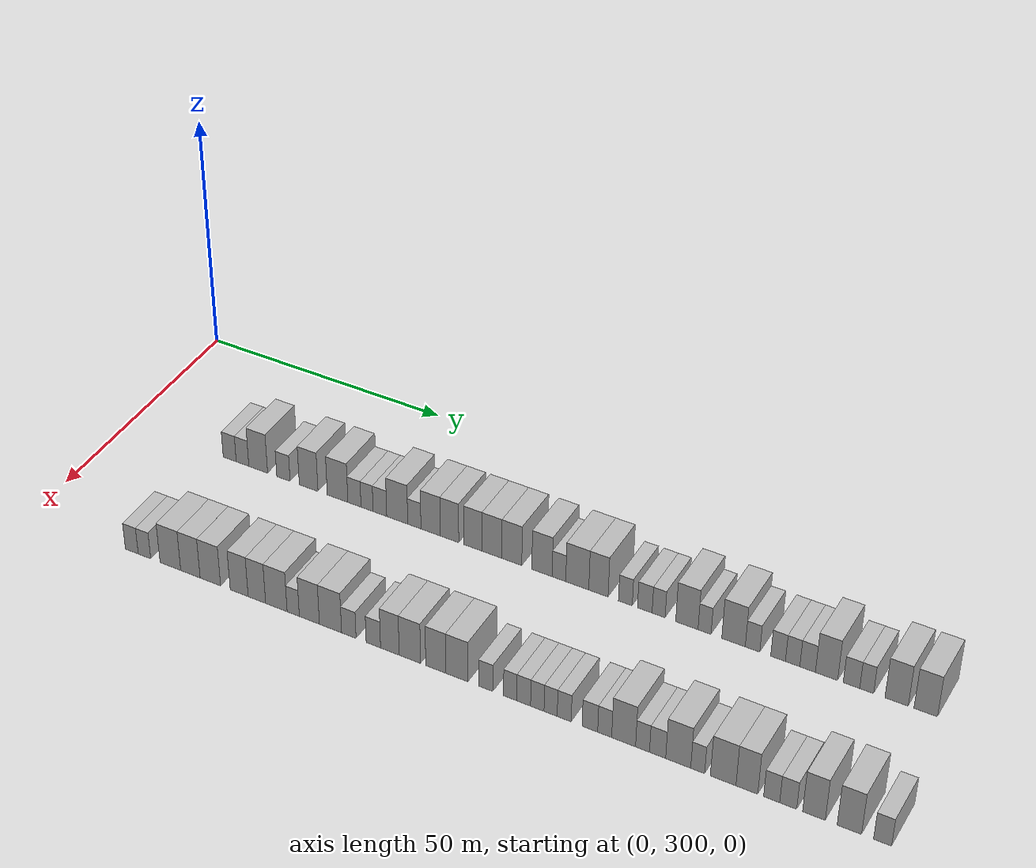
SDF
<sdf version="1.6">
 <world name="default">
  <model name="building_194">
   <static>1</static>
   <pose>25.0000 322.6376 0 0.000000 0.000000 0.000000</pose>
   <link name="link">
    <pose>0 0 3.00 0 0 0</pose>
    <collision name="collision"><geometry><box><size>10.0000 2.8673 6.0000</size></box></geometry></collision>
    <visual name="visual">
     <cast_shadows>0</cast_shadows>
     <geometry><box><size>10.0000 2.8673 6.0000</size></box></geometry>
     <material>
      <script>
       <uri>model://HANNAS_wall/materials/scripts</uri>
       <uri>model://HANNAS_wall/materials/textures</uri>
       <name>vrc/HANNAS_wall</name>
      </script>
     </material>
    </visual>
   </link>
  </model>
  <model name="building_195">
   <static>1</static>
   <pose>25.0000 325.4622 0 0.000000 0.000000 0.000000</pose>
   <link name="link">
    <pose>0 0 3.00 0 0 0</pose>
    <collision name="collision"><geometry><box><size>10.0000 2.7819 6.0000</size></box></geometry></collision>
    <visual name="visual">
     <cast_shadows>0</cast_shadows>
     <geometry><box><size>10.0000 2.7819 6.0000</size></box></geometry>
     <material>
      <script>
       <uri>model://HANNAS_wall/materials/scripts</uri>
       <uri>model://HANNAS_wall/materials/textures</uri>
       <name>vrc/HANNAS_wall</name>
      </script>
     </material>
    </visual>
   </link>
  </model>
  <model name="building_196">
   <static>1</static>
   <pose>25.0000 328.9124 0 0.000000 0.000000 0.000000</pose>
   <link name="link">
    <pose>0 0 4.50 0 0 0</pose>
    <collision name="collision"><geometry><box><size>10.0000 4.1185 9.0000</size></box></geometry></collision>
    <visual name="visual">
     <cast_shadows>0</cast_shadows>
     <geometry><box><size>10.0000 4.1185 9.0000</size></box></geometry>
     <material>
      <script>
       <uri>model://HANNAS_wall/materials/scripts</uri>
       <uri>model://HANNAS_wall/materials/textures</uri>
       <name>vrc/HANNAS_wall</name>
      </script>
     </material>
    </visual>
   </link>
  </model>
  <model name="building_197">
   <static>1</static>
   <pose>25.0000 334.4151 0 0.000000 0.000000 0.000000</pose>
   <link name="link">
    <pose>0 0 3.00 0 0 0</pose>
    <collision name="collision"><geometry><box><size>10.0000 2.8869 6.0000</size></box></geometry></collision>
    <visual name="visual">
     <cast_shadows>0</cast_shadows>
     <geometry><box><size>10.0000 2.8869 6.0000</size></box></geometry>
     <material>
      <script>
       <uri>model://HANNAS_wall/materials/scripts</uri>
       <uri>model://HANNAS_wall/materials/textures</uri>
       <name>vrc/HANNAS_wall</name>
      </script>
     </material>
    </visual>
   </link>
  </model>
  <model name="building_198">
   <static>1</static>
   <pose>25.0000 339.8679 0 0.000000 0.000000 0.000000</pose>
   <link name="link">
    <pose>0 0 4.50 0 0 0</pose>
    <collision name="collision"><geometry><box><size>10.0000 4.0186 9.0000</size></box></geometry></collision>
    <visual name="visual">
     <cast_shadows>0</cast_shadows>
     <geometry><box><size>10.0000 4.0186 9.0000</size></box></geometry>
     <material>
      <script>
       <uri>model://HANNAS_wall/materials/scripts</uri>
       <uri>model://HANNAS_wall/materials/textures</uri>
       <name>vrc/HANNAS_wall</name>
      </script>
     </material>
    </visual>
   </link>
  </model>
  <model name="building_199">
   <static>1</static>
   <pose>25.0000 346.0667 0 0.000000 0.000000 0.000000</pose>
   <link name="link">
    <pose>0 0 4.50 0 0 0</pose>
    <collision name="collision"><geometry><box><size>10.0000 4.3789 9.0000</size></box></geometry></collision>
    <visual name="visual">
     <cast_shadows>0</cast_shadows>
     <geometry><box><size>10.0000 4.3789 9.0000</size></box></geometry>
     <material>
      <script>
       <uri>model://HANNAS_wall/materials/scripts</uri>
       <uri>model://HANNAS_wall/materials/textures</uri>
       <name>vrc/HANNAS_wall</name>
      </script>
     </material>
    </visual>
   </link>
  </model>
  <model name="building_200">
   <static>1</static>
   <pose>25.0000 349.6425 0 0.000000 0.000000 0.000000</pose>
   <link name="link">
    <pose>0 0 3.00 0 0 0</pose>
    <collision name="collision"><geometry><box><size>10.0000 2.7727 6.0000</size></box></geometry></collision>
    <visual name="visual">
     <cast_shadows>0</cast_shadows>
     <geometry><box><size>10.0000 2.7727 6.0000</size></box></geometry>
     <material>
      <script>
       <uri>model://HANNAS_wall/materials/scripts</uri>
       <uri>model://HANNAS_wall/materials/textures</uri>
       <name>vrc/HANNAS_wall</name>
      </script>
     </material>
    </visual>
   </link>
  </model>
  <model name="building_201">
   <static>1</static>
   <pose>25.0000 352.3011 0 0.000000 0.000000 0.000000</pose>
   <link name="link">
    <pose>0 0 3.00 0 0 0</pose>
    <collision name="collision"><geometry><box><size>10.0000 2.5446 6.0000</size></box></geometry></collision>
    <visual name="visual">
     <cast_shadows>0</cast_shadows>
     <geometry><box><size>10.0000 2.5446 6.0000</size></box></geometry>
     <material>
      <script>
       <uri>model://HANNAS_wall/materials/scripts</uri>
       <uri>model://HANNAS_wall/materials/textures</uri>
       <name>vrc/HANNAS_wall</name>
      </script>
     </material>
    </visual>
   </link>
  </model>
  <model name="building_202">
   <static>1</static>
   <pose>25.0000 355.0035 0 0.000000 0.000000 0.000000</pose>
   <link name="link">
    <pose>0 0 3.00 0 0 0</pose>
    <collision name="collision"><geometry><box><size>10.0000 2.8601 6.0000</size></box></geometry></collision>
    <visual name="visual">
     <cast_shadows>0</cast_shadows>
     <geometry><box><size>10.0000 2.8601 6.0000</size></box></geometry>
     <material>
      <script>
       <uri>model://HANNAS_wall/materials/scripts</uri>
       <uri>model://HANNAS_wall/materials/textures</uri>
       <name>vrc/HANNAS_wall</name>
      </script>
     </material>
    </visual>
   </link>
  </model>
  <model name="building_203">
   <static>1</static>
   <pose>25.0000 358.6235 0 0.000000 0.000000 0.000000</pose>
   <link name="link">
    <pose>0 0 4.50 0 0 0</pose>
    <collision name="collision"><geometry><box><size>10.0000 4.3799 9.0000</size></box></geometry></collision>
    <visual name="visual">
     <cast_shadows>0</cast_shadows>
     <geometry><box><size>10.0000 4.3799 9.0000</size></box></geometry>
     <material>
      <script>
       <uri>model://HANNAS_wall/materials/scripts</uri>
       <uri>model://HANNAS_wall/materials/textures</uri>
       <name>vrc/HANNAS_wall</name>
      </script>
     </material>
    </visual>
   </link>
  </model>
  <model name="building_204">
   <static>1</static>
   <pose>25.0000 362.1797 0 0.000000 0.000000 0.000000</pose>
   <link name="link">
    <pose>0 0 3.00 0 0 0</pose>
    <collision name="collision"><geometry><box><size>10.0000 2.7323 6.0000</size></box></geometry></collision>
    <visual name="visual">
     <cast_shadows>0</cast_shadows>
     <geometry><box><size>10.0000 2.7323 6.0000</size></box></geometry>
     <material>
      <script>
       <uri>model://HANNAS_wall/materials/scripts</uri>
       <uri>model://HANNAS_wall/materials/textures</uri>
       <name>vrc/HANNAS_wall</name>
      </script>
     </material>
    </visual>
   </link>
  </model>
  <model name="building_205">
   <static>1</static>
   <pose>25.0000 365.5267 0 0.000000 0.000000 0.000000</pose>
   <link name="link">
    <pose>0 0 4.50 0 0 0</pose>
    <collision name="collision"><geometry><box><size>10.0000 3.9617 9.0000</size></box></geometry></collision>
    <visual name="visual">
     <cast_shadows>0</cast_shadows>
     <geometry><box><size>10.0000 3.9617 9.0000</size></box></geometry>
     <material>
      <script>
       <uri>model://HANNAS_wall/materials/scripts</uri>
       <uri>model://HANNAS_wall/materials/textures</uri>
       <name>vrc/HANNAS_wall</name>
      </script>
     </material>
    </visual>
   </link>
  </model>
  <model name="building_206">
   <static>1</static>
   <pose>25.0000 369.4038 0 0.000000 0.000000 0.000000</pose>
   <link name="link">
    <pose>0 0 4.50 0 0 0</pose>
    <collision name="collision"><geometry><box><size>10.0000 3.7926 9.0000</size></box></geometry></collision>
    <visual name="visual">
     <cast_shadows>0</cast_shadows>
     <geometry><box><size>10.0000 3.7926 9.0000</size></box></geometry>
     <material>
      <script>
       <uri>model://HANNAS_wall/materials/scripts</uri>
       <uri>model://HANNAS_wall/materials/textures</uri>
       <name>vrc/HANNAS_wall</name>
      </script>
     </material>
    </visual>
   </link>
  </model>
  <model name="building_207">
   <static>1</static>
   <pose>25.0000 374.1595 0 0.000000 0.000000 0.000000</pose>
   <link name="link">
    <pose>0 0 4.50 0 0 0</pose>
    <collision name="collision"><geometry><box><size>10.0000 3.7188 9.0000</size></box></geometry></collision>
    <visual name="visual">
     <cast_shadows>0</cast_shadows>
     <geometry><box><size>10.0000 3.7188 9.0000</size></box></geometry>
     <material>
      <script>
       <uri>model://HANNAS_wall/materials/scripts</uri>
       <uri>model://HANNAS_wall/materials/textures</uri>
       <name>vrc/HANNAS_wall</name>
      </script>
     </material>
    </visual>
   </link>
  </model>
  <model name="building_208">
   <static>1</static>
   <pose>25.0000 378.0208 0 0.000000 0.000000 0.000000</pose>
   <link name="link">
    <pose>0 0 4.50 0 0 0</pose>
    <collision name="collision"><geometry><box><size>10.0000 4.0037 9.0000</size></box></geometry></collision>
    <visual name="visual">
     <cast_shadows>0</cast_shadows>
     <geometry><box><size>10.0000 4.0037 9.0000</size></box></geometry>
     <material>
      <script>
       <uri>model://HANNAS_wall/materials/scripts</uri>
       <uri>model://HANNAS_wall/materials/textures</uri>
       <name>vrc/HANNAS_wall</name>
      </script>
     </material>
    </visual>
   </link>
  </model>
  <model name="building_209">
   <static>1</static>
   <pose>25.0000 382.0161 0 0.000000 0.000000 0.000000</pose>
   <link name="link">
    <pose>0 0 4.50 0 0 0</pose>
    <collision name="collision"><geometry><box><size>10.0000 3.9869 9.0000</size></box></geometry></collision>
    <visual name="visual">
     <cast_shadows>0</cast_shadows>
     <geometry><box><size>10.0000 3.9869 9.0000</size></box></geometry>
     <material>
      <script>
       <uri>model://HANNAS_wall/materials/scripts</uri>
       <uri>model://HANNAS_wall/materials/textures</uri>
       <name>vrc/HANNAS_wall</name>
      </script>
     </material>
    </visual>
   </link>
  </model>
  <model name="building_210">
   <static>1</static>
   <pose>25.0000 388.0205 0 0.000000 0.000000 0.000000</pose>
   <link name="link">
    <pose>0 0 4.50 0 0 0</pose>
    <collision name="collision"><geometry><box><size>10.0000 4.0218 9.0000</size></box></geometry></collision>
    <visual name="visual">
     <cast_shadows>0</cast_shadows>
     <geometry><box><size>10.0000 4.0218 9.0000</size></box></geometry>
     <material>
      <script>
       <uri>model://HANNAS_wall/materials/scripts</uri>
       <uri>model://HANNAS_wall/materials/textures</uri>
       <name>vrc/HANNAS_wall</name>
      </script>
     </material>
    </visual>
   </link>
  </model>
  <model name="building_211">
   <static>1</static>
   <pose>25.0000 391.3717 0 0.000000 0.000000 0.000000</pose>
   <link name="link">
    <pose>0 0 3.00 0 0 0</pose>
    <collision name="collision"><geometry><box><size>10.0000 2.6807 6.0000</size></box></geometry></collision>
    <visual name="visual">
     <cast_shadows>0</cast_shadows>
     <geometry><box><size>10.0000 2.6807 6.0000</size></box></geometry>
     <material>
      <script>
       <uri>model://HANNAS_wall/materials/scripts</uri>
       <uri>model://HANNAS_wall/materials/textures</uri>
       <name>vrc/HANNAS_wall</name>
      </script>
     </material>
    </visual>
   </link>
  </model>
  <model name="building_212">
   <static>1</static>
   <pose>25.0000 394.9613 0 0.000000 0.000000 0.000000</pose>
   <link name="link">
    <pose>0 0 4.50 0 0 0</pose>
    <collision name="collision"><geometry><box><size>10.0000 4.4985 9.0000</size></box></geometry></collision>
    <visual name="visual">
     <cast_shadows>0</cast_shadows>
     <geometry><box><size>10.0000 4.4985 9.0000</size></box></geometry>
     <material>
      <script>
       <uri>model://HANNAS_wall/materials/scripts</uri>
       <uri>model://HANNAS_wall/materials/textures</uri>
       <name>vrc/HANNAS_wall</name>
      </script>
     </material>
    </visual>
   </link>
  </model>
  <model name="building_213">
   <static>1</static>
   <pose>25.0000 399.0851 0 0.000000 0.000000 0.000000</pose>
   <link name="link">
    <pose>0 0 4.50 0 0 0</pose>
    <collision name="collision"><geometry><box><size>10.0000 3.7490 9.0000</size></box></geometry></collision>
    <visual name="visual">
     <cast_shadows>0</cast_shadows>
     <geometry><box><size>10.0000 3.7490 9.0000</size></box></geometry>
     <material>
      <script>
       <uri>model://HANNAS_wall/materials/scripts</uri>
       <uri>model://HANNAS_wall/materials/textures</uri>
       <name>vrc/HANNAS_wall</name>
      </script>
     </material>
    </visual>
   </link>
  </model>
  <model name="building_214">
   <static>1</static>
   <pose>25.0000 404.2882 0 0.000000 0.000000 0.000000</pose>
   <link name="link">
    <pose>0 0 3.00 0 0 0</pose>
    <collision name="collision"><geometry><box><size>10.0000 2.6572 6.0000</size></box></geometry></collision>
    <visual name="visual">
     <cast_shadows>0</cast_shadows>
     <geometry><box><size>10.0000 2.6572 6.0000</size></box></geometry>
     <material>
      <script>
       <uri>model://HANNAS_wall/materials/scripts</uri>
       <uri>model://HANNAS_wall/materials/textures</uri>
       <name>vrc/HANNAS_wall</name>
      </script>
     </material>
    </visual>
   </link>
  </model>
  <model name="building_215">
   <static>1</static>
   <pose>25.0000 408.0129 0 0.000000 0.000000 0.000000</pose>
   <link name="link">
    <pose>0 0 3.00 0 0 0</pose>
    <collision name="collision"><geometry><box><size>10.0000 2.7921 6.0000</size></box></geometry></collision>
    <visual name="visual">
     <cast_shadows>0</cast_shadows>
     <geometry><box><size>10.0000 2.7921 6.0000</size></box></geometry>
     <material>
      <script>
       <uri>model://HANNAS_wall/materials/scripts</uri>
       <uri>model://HANNAS_wall/materials/textures</uri>
       <name>vrc/HANNAS_wall</name>
      </script>
     </material>
    </visual>
   </link>
  </model>
  <model name="building_216">
   <static>1</static>
   <pose>25.0000 410.6489 0 0.000000 0.000000 0.000000</pose>
   <link name="link">
    <pose>0 0 3.00 0 0 0</pose>
    <collision name="collision"><geometry><box><size>10.0000 2.4799 6.0000</size></box></geometry></collision>
    <visual name="visual">
     <cast_shadows>0</cast_shadows>
     <geometry><box><size>10.0000 2.4799 6.0000</size></box></geometry>
     <material>
      <script>
       <uri>model://HANNAS_wall/materials/scripts</uri>
       <uri>model://HANNAS_wall/materials/textures</uri>
       <name>vrc/HANNAS_wall</name>
      </script>
     </material>
    </visual>
   </link>
  </model>
  <model name="building_217">
   <static>1</static>
   <pose>25.0000 415.9934 0 0.000000 0.000000 0.000000</pose>
   <link name="link">
    <pose>0 0 4.50 0 0 0</pose>
    <collision name="collision"><geometry><box><size>10.0000 4.2091 9.0000</size></box></geometry></collision>
    <visual name="visual">
     <cast_shadows>0</cast_shadows>
     <geometry><box><size>10.0000 4.2091 9.0000</size></box></geometry>
     <material>
      <script>
       <uri>model://HANNAS_wall/materials/scripts</uri>
       <uri>model://HANNAS_wall/materials/textures</uri>
       <name>vrc/HANNAS_wall</name>
      </script>
     </material>
    </visual>
   </link>
  </model>
  <model name="building_218">
   <static>1</static>
   <pose>25.0000 419.3161 0 0.000000 0.000000 0.000000</pose>
   <link name="link">
    <pose>0 0 3.00 0 0 0</pose>
    <collision name="collision"><geometry><box><size>10.0000 2.4364 6.0000</size></box></geometry></collision>
    <visual name="visual">
     <cast_shadows>0</cast_shadows>
     <geometry><box><size>10.0000 2.4364 6.0000</size></box></geometry>
     <material>
      <script>
       <uri>model://HANNAS_wall/materials/scripts</uri>
       <uri>model://HANNAS_wall/materials/textures</uri>
       <name>vrc/HANNAS_wall</name>
      </script>
     </material>
    </visual>
   </link>
  </model>
  <model name="building_219">
   <static>1</static>
   <pose>25.0000 424.7090 0 0.000000 0.000000 0.000000</pose>
   <link name="link">
    <pose>0 0 4.50 0 0 0</pose>
    <collision name="collision"><geometry><box><size>10.0000 4.3493 9.0000</size></box></geometry></collision>
    <visual name="visual">
     <cast_shadows>0</cast_shadows>
     <geometry><box><size>10.0000 4.3493 9.0000</size></box></geometry>
     <material>
      <script>
       <uri>model://HANNAS_wall/materials/scripts</uri>
       <uri>model://HANNAS_wall/materials/textures</uri>
       <name>vrc/HANNAS_wall</name>
      </script>
     </material>
    </visual>
   </link>
  </model>
  <model name="building_220">
   <static>1</static>
   <pose>25.0000 428.2257 0 0.000000 0.000000 0.000000</pose>
   <link name="link">
    <pose>0 0 3.00 0 0 0</pose>
    <collision name="collision"><geometry><box><size>10.0000 2.6842 6.0000</size></box></geometry></collision>
    <visual name="visual">
     <cast_shadows>0</cast_shadows>
     <geometry><box><size>10.0000 2.6842 6.0000</size></box></geometry>
     <material>
      <script>
       <uri>model://HANNAS_wall/materials/scripts</uri>
       <uri>model://HANNAS_wall/materials/textures</uri>
       <name>vrc/HANNAS_wall</name>
      </script>
     </material>
    </visual>
   </link>
  </model>
  <model name="building_221">
   <static>1</static>
   <pose>25.0000 432.9094 0 0.000000 0.000000 0.000000</pose>
   <link name="link">
    <pose>0 0 3.00 0 0 0</pose>
    <collision name="collision"><geometry><box><size>10.0000 2.6832 6.0000</size></box></geometry></collision>
    <visual name="visual">
     <cast_shadows>0</cast_shadows>
     <geometry><box><size>10.0000 2.6832 6.0000</size></box></geometry>
     <material>
      <script>
       <uri>model://HANNAS_wall/materials/scripts</uri>
       <uri>model://HANNAS_wall/materials/textures</uri>
       <name>vrc/HANNAS_wall</name>
      </script>
     </material>
    </visual>
   </link>
  </model>
  <model name="building_222">
   <static>1</static>
   <pose>25.0000 435.5595 0 0.000000 0.000000 0.000000</pose>
   <link name="link">
    <pose>0 0 3.00 0 0 0</pose>
    <collision name="collision"><geometry><box><size>10.0000 2.6170 6.0000</size></box></geometry></collision>
    <visual name="visual">
     <cast_shadows>0</cast_shadows>
     <geometry><box><size>10.0000 2.6170 6.0000</size></box></geometry>
     <material>
      <script>
       <uri>model://HANNAS_wall/materials/scripts</uri>
       <uri>model://HANNAS_wall/materials/textures</uri>
       <name>vrc/HANNAS_wall</name>
      </script>
     </material>
    </visual>
   </link>
  </model>
  <model name="building_223">
   <static>1</static>
   <pose>25.0000 438.2754 0 0.000000 0.000000 0.000000</pose>
   <link name="link">
    <pose>0 0 3.00 0 0 0</pose>
    <collision name="collision"><geometry><box><size>10.0000 2.8149 6.0000</size></box></geometry></collision>
    <visual name="visual">
     <cast_shadows>0</cast_shadows>
     <geometry><box><size>10.0000 2.8149 6.0000</size></box></geometry>
     <material>
      <script>
       <uri>model://HANNAS_wall/materials/scripts</uri>
       <uri>model://HANNAS_wall/materials/textures</uri>
       <name>vrc/HANNAS_wall</name>
      </script>
     </material>
    </visual>
   </link>
  </model>
  <model name="building_224">
   <static>1</static>
   <pose>25.0000 441.6803 0 0.000000 0.000000 0.000000</pose>
   <link name="link">
    <pose>0 0 4.50 0 0 0</pose>
    <collision name="collision"><geometry><box><size>10.0000 3.9948 9.0000</size></box></geometry></collision>
    <visual name="visual">
     <cast_shadows>0</cast_shadows>
     <geometry><box><size>10.0000 3.9948 9.0000</size></box></geometry>
     <material>
      <script>
       <uri>model://HANNAS_wall/materials/scripts</uri>
       <uri>model://HANNAS_wall/materials/textures</uri>
       <name>vrc/HANNAS_wall</name>
      </script>
     </material>
    </visual>
   </link>
  </model>
  <model name="building_225">
   <static>1</static>
   <pose>25.0000 446.1453 0 0.000000 0.000000 0.000000</pose>
   <link name="link">
    <pose>0 0 3.00 0 0 0</pose>
    <collision name="collision"><geometry><box><size>10.0000 2.9351 6.0000</size></box></geometry></collision>
    <visual name="visual">
     <cast_shadows>0</cast_shadows>
     <geometry><box><size>10.0000 2.9351 6.0000</size></box></geometry>
     <material>
      <script>
       <uri>model://HANNAS_wall/materials/scripts</uri>
       <uri>model://HANNAS_wall/materials/textures</uri>
       <name>vrc/HANNAS_wall</name>
      </script>
     </material>
    </visual>
   </link>
  </model>
  <model name="building_226">
   <static>1</static>
   <pose>25.0000 448.8474 0 0.000000 0.000000 0.000000</pose>
   <link name="link">
    <pose>0 0 3.00 0 0 0</pose>
    <collision name="collision"><geometry><box><size>10.0000 2.4692 6.0000</size></box></geometry></collision>
    <visual name="visual">
     <cast_shadows>0</cast_shadows>
     <geometry><box><size>10.0000 2.4692 6.0000</size></box></geometry>
     <material>
      <script>
       <uri>model://HANNAS_wall/materials/scripts</uri>
       <uri>model://HANNAS_wall/materials/textures</uri>
       <name>vrc/HANNAS_wall</name>
      </script>
     </material>
    </visual>
   </link>
  </model>
  <model name="building_227">
   <static>1</static>
   <pose>25.0000 454.1247 0 0.000000 0.000000 0.000000</pose>
   <link name="link">
    <pose>0 0 4.50 0 0 0</pose>
    <collision name="collision"><geometry><box><size>10.0000 4.0855 9.0000</size></box></geometry></collision>
    <visual name="visual">
     <cast_shadows>0</cast_shadows>
     <geometry><box><size>10.0000 4.0855 9.0000</size></box></geometry>
     <material>
      <script>
       <uri>model://HANNAS_wall/materials/scripts</uri>
       <uri>model://HANNAS_wall/materials/textures</uri>
       <name>vrc/HANNAS_wall</name>
      </script>
     </material>
    </visual>
   </link>
  </model>
  <model name="building_228">
   <static>1</static>
   <pose>25.0000 459.2146 0 0.000000 0.000000 0.000000</pose>
   <link name="link">
    <pose>0 0 4.50 0 0 0</pose>
    <collision name="collision"><geometry><box><size>10.0000 4.0942 9.0000</size></box></geometry></collision>
    <visual name="visual">
     <cast_shadows>0</cast_shadows>
     <geometry><box><size>10.0000 4.0942 9.0000</size></box></geometry>
     <material>
      <script>
       <uri>model://HANNAS_wall/materials/scripts</uri>
       <uri>model://HANNAS_wall/materials/textures</uri>
       <name>vrc/HANNAS_wall</name>
      </script>
     </material>
    </visual>
   </link>
  </model>
  <model name="building_428">
   <static>1</static>
   <pose>55.0000 321.6876 0 0.000000 0.000000 0.000000</pose>
   <link name="link">
    <pose>0 0 3.00 0 0 0</pose>
    <collision name="collision"><geometry><box><size>10.0000 2.7574 6.0000</size></box></geometry></collision>
    <visual name="visual">
     <cast_shadows>0</cast_shadows>
     <geometry><box><size>10.0000 2.7574 6.0000</size></box></geometry>
     <material>
      <script>
       <uri>model://HANNAS_wall/materials/scripts</uri>
       <uri>model://HANNAS_wall/materials/textures</uri>
       <name>vrc/HANNAS_wall</name>
      </script>
     </material>
    </visual>
   </link>
  </model>
  <model name="building_429">
   <static>1</static>
   <pose>55.0000 324.4040 0 0.000000 0.000000 0.000000</pose>
   <link name="link">
    <pose>0 0 3.00 0 0 0</pose>
    <collision name="collision"><geometry><box><size>10.0000 2.6754 6.0000</size></box></geometry></collision>
    <visual name="visual">
     <cast_shadows>0</cast_shadows>
     <geometry><box><size>10.0000 2.6754 6.0000</size></box></geometry>
     <material>
      <script>
       <uri>model://HANNAS_wall/materials/scripts</uri>
       <uri>model://HANNAS_wall/materials/textures</uri>
       <name>vrc/HANNAS_wall</name>
      </script>
     </material>
    </visual>
   </link>
  </model>
  <model name="building_430">
   <static>1</static>
   <pose>55.0000 329.9365 0 0.000000 0.000000 0.000000</pose>
   <link name="link">
    <pose>0 0 4.50 0 0 0</pose>
    <collision name="collision"><geometry><box><size>10.0000 4.3896 9.0000</size></box></geometry></collision>
    <visual name="visual">
     <cast_shadows>0</cast_shadows>
     <geometry><box><size>10.0000 4.3896 9.0000</size></box></geometry>
     <material>
      <script>
       <uri>model://HANNAS_wall/materials/scripts</uri>
       <uri>model://HANNAS_wall/materials/textures</uri>
       <name>vrc/HANNAS_wall</name>
      </script>
     </material>
    </visual>
   </link>
  </model>
  <model name="building_431">
   <static>1</static>
   <pose>55.0000 334.1739 0 0.000000 0.000000 0.000000</pose>
   <link name="link">
    <pose>0 0 4.50 0 0 0</pose>
    <collision name="collision"><geometry><box><size>10.0000 4.0851 9.0000</size></box></geometry></collision>
    <visual name="visual">
     <cast_shadows>0</cast_shadows>
     <geometry><box><size>10.0000 4.0851 9.0000</size></box></geometry>
     <material>
      <script>
       <uri>model://HANNAS_wall/materials/scripts</uri>
       <uri>model://HANNAS_wall/materials/textures</uri>
       <name>vrc/HANNAS_wall</name>
      </script>
     </material>
    </visual>
   </link>
  </model>
  <model name="building_432">
   <static>1</static>
   <pose>55.0000 338.3595 0 0.000000 0.000000 0.000000</pose>
   <link name="link">
    <pose>0 0 4.50 0 0 0</pose>
    <collision name="collision"><geometry><box><size>10.0000 4.2860 9.0000</size></box></geometry></collision>
    <visual name="visual">
     <cast_shadows>0</cast_shadows>
     <geometry><box><size>10.0000 4.2860 9.0000</size></box></geometry>
     <material>
      <script>
       <uri>model://HANNAS_wall/materials/scripts</uri>
       <uri>model://HANNAS_wall/materials/textures</uri>
       <name>vrc/HANNAS_wall</name>
      </script>
     </material>
    </visual>
   </link>
  </model>
  <model name="building_433">
   <static>1</static>
   <pose>55.0000 344.3562 0 0.000000 0.000000 0.000000</pose>
   <link name="link">
    <pose>0 0 4.50 0 0 0</pose>
    <collision name="collision"><geometry><box><size>10.0000 3.7074 9.0000</size></box></geometry></collision>
    <visual name="visual">
     <cast_shadows>0</cast_shadows>
     <geometry><box><size>10.0000 3.7074 9.0000</size></box></geometry>
     <material>
      <script>
       <uri>model://HANNAS_wall/materials/scripts</uri>
       <uri>model://HANNAS_wall/materials/textures</uri>
       <name>vrc/HANNAS_wall</name>
      </script>
     </material>
    </visual>
   </link>
  </model>
  <model name="building_434">
   <static>1</static>
   <pose>55.0000 348.0102 0 0.000000 0.000000 0.000000</pose>
   <link name="link">
    <pose>0 0 4.50 0 0 0</pose>
    <collision name="collision"><geometry><box><size>10.0000 3.6005 9.0000</size></box></geometry></collision>
    <visual name="visual">
     <cast_shadows>0</cast_shadows>
     <geometry><box><size>10.0000 3.6005 9.0000</size></box></geometry>
     <material>
      <script>
       <uri>model://HANNAS_wall/materials/scripts</uri>
       <uri>model://HANNAS_wall/materials/textures</uri>
       <name>vrc/HANNAS_wall</name>
      </script>
     </material>
    </visual>
   </link>
  </model>
  <model name="building_435">
   <static>1</static>
   <pose>55.0000 352.0028 0 0.000000 0.000000 0.000000</pose>
   <link name="link">
    <pose>0 0 4.50 0 0 0</pose>
    <collision name="collision"><geometry><box><size>10.0000 4.3847 9.0000</size></box></geometry></collision>
    <visual name="visual">
     <cast_shadows>0</cast_shadows>
     <geometry><box><size>10.0000 4.3847 9.0000</size></box></geometry>
     <material>
      <script>
       <uri>model://HANNAS_wall/materials/scripts</uri>
       <uri>model://HANNAS_wall/materials/textures</uri>
       <name>vrc/HANNAS_wall</name>
      </script>
     </material>
    </visual>
   </link>
  </model>
  <model name="building_436">
   <static>1</static>
   <pose>55.0000 355.4375 0 0.000000 0.000000 0.000000</pose>
   <link name="link">
    <pose>0 0 3.00 0 0 0</pose>
    <collision name="collision"><geometry><box><size>10.0000 2.4847 6.0000</size></box></geometry></collision>
    <visual name="visual">
     <cast_shadows>0</cast_shadows>
     <geometry><box><size>10.0000 2.4847 6.0000</size></box></geometry>
     <material>
      <script>
       <uri>model://HANNAS_wall/materials/scripts</uri>
       <uri>model://HANNAS_wall/materials/textures</uri>
       <name>vrc/HANNAS_wall</name>
      </script>
     </material>
    </visual>
   </link>
  </model>
  <model name="building_437">
   <static>1</static>
   <pose>55.0000 358.7030 0 0.000000 0.000000 0.000000</pose>
   <link name="link">
    <pose>0 0 4.50 0 0 0</pose>
    <collision name="collision"><geometry><box><size>10.0000 4.0464 9.0000</size></box></geometry></collision>
    <visual name="visual">
     <cast_shadows>0</cast_shadows>
     <geometry><box><size>10.0000 4.0464 9.0000</size></box></geometry>
     <material>
      <script>
       <uri>model://HANNAS_wall/materials/scripts</uri>
       <uri>model://HANNAS_wall/materials/textures</uri>
       <name>vrc/HANNAS_wall</name>
      </script>
     </material>
    </visual>
   </link>
  </model>
  <model name="building_438">
   <static>1</static>
   <pose>55.0000 362.9488 0 0.000000 0.000000 0.000000</pose>
   <link name="link">
    <pose>0 0 4.50 0 0 0</pose>
    <collision name="collision"><geometry><box><size>10.0000 4.4452 9.0000</size></box></geometry></collision>
    <visual name="visual">
     <cast_shadows>0</cast_shadows>
     <geometry><box><size>10.0000 4.4452 9.0000</size></box></geometry>
     <material>
      <script>
       <uri>model://HANNAS_wall/materials/scripts</uri>
       <uri>model://HANNAS_wall/materials/textures</uri>
       <name>vrc/HANNAS_wall</name>
      </script>
     </material>
    </visual>
   </link>
  </model>
  <model name="building_439">
   <static>1</static>
   <pose>55.0000 366.6100 0 0.000000 0.000000 0.000000</pose>
   <link name="link">
    <pose>0 0 3.00 0 0 0</pose>
    <collision name="collision"><geometry><box><size>10.0000 2.8772 6.0000</size></box></geometry></collision>
    <visual name="visual">
     <cast_shadows>0</cast_shadows>
     <geometry><box><size>10.0000 2.8772 6.0000</size></box></geometry>
     <material>
      <script>
       <uri>model://HANNAS_wall/materials/scripts</uri>
       <uri>model://HANNAS_wall/materials/textures</uri>
       <name>vrc/HANNAS_wall</name>
      </script>
     </material>
    </visual>
   </link>
  </model>
  <model name="building_440">
   <static>1</static>
   <pose>55.0000 371.4653 0 0.000000 0.000000 0.000000</pose>
   <link name="link">
    <pose>0 0 3.00 0 0 0</pose>
    <collision name="collision"><geometry><box><size>10.0000 2.8335 6.0000</size></box></geometry></collision>
    <visual name="visual">
     <cast_shadows>0</cast_shadows>
     <geometry><box><size>10.0000 2.8335 6.0000</size></box></geometry>
     <material>
      <script>
       <uri>model://HANNAS_wall/materials/scripts</uri>
       <uri>model://HANNAS_wall/materials/textures</uri>
       <name>vrc/HANNAS_wall</name>
      </script>
     </material>
    </visual>
   </link>
  </model>
  <model name="building_441">
   <static>1</static>
   <pose>55.0000 374.7068 0 0.000000 0.000000 0.000000</pose>
   <link name="link">
    <pose>0 0 4.50 0 0 0</pose>
    <collision name="collision"><geometry><box><size>10.0000 3.6495 9.0000</size></box></geometry></collision>
    <visual name="visual">
     <cast_shadows>0</cast_shadows>
     <geometry><box><size>10.0000 3.6495 9.0000</size></box></geometry>
     <material>
      <script>
       <uri>model://HANNAS_wall/materials/scripts</uri>
       <uri>model://HANNAS_wall/materials/textures</uri>
       <name>vrc/HANNAS_wall</name>
      </script>
     </material>
    </visual>
   </link>
  </model>
  <model name="building_442">
   <static>1</static>
   <pose>55.0000 378.6136 0 0.000000 0.000000 0.000000</pose>
   <link name="link">
    <pose>0 0 4.50 0 0 0</pose>
    <collision name="collision"><geometry><box><size>10.0000 4.1640 9.0000</size></box></geometry></collision>
    <visual name="visual">
     <cast_shadows>0</cast_shadows>
     <geometry><box><size>10.0000 4.1640 9.0000</size></box></geometry>
     <material>
      <script>
       <uri>model://HANNAS_wall/materials/scripts</uri>
       <uri>model://HANNAS_wall/materials/textures</uri>
       <name>vrc/HANNAS_wall</name>
      </script>
     </material>
    </visual>
   </link>
  </model>
  <model name="building_443">
   <static>1</static>
   <pose>55.0000 383.6241 0 0.000000 0.000000 0.000000</pose>
   <link name="link">
    <pose>0 0 4.50 0 0 0</pose>
    <collision name="collision"><geometry><box><size>10.0000 3.8570 9.0000</size></box></geometry></collision>
    <visual name="visual">
     <cast_shadows>0</cast_shadows>
     <geometry><box><size>10.0000 3.8570 9.0000</size></box></geometry>
     <material>
      <script>
       <uri>model://HANNAS_wall/materials/scripts</uri>
       <uri>model://HANNAS_wall/materials/textures</uri>
       <name>vrc/HANNAS_wall</name>
      </script>
     </material>
    </visual>
   </link>
  </model>
  <model name="building_444">
   <static>1</static>
   <pose>55.0000 387.6857 0 0.000000 0.000000 0.000000</pose>
   <link name="link">
    <pose>0 0 4.50 0 0 0</pose>
    <collision name="collision"><geometry><box><size>10.0000 4.2662 9.0000</size></box></geometry></collision>
    <visual name="visual">
     <cast_shadows>0</cast_shadows>
     <geometry><box><size>10.0000 4.2662 9.0000</size></box></geometry>
     <material>
      <script>
       <uri>model://HANNAS_wall/materials/scripts</uri>
       <uri>model://HANNAS_wall/materials/textures</uri>
       <name>vrc/HANNAS_wall</name>
      </script>
     </material>
    </visual>
   </link>
  </model>
  <model name="building_445">
   <static>1</static>
   <pose>55.0000 393.1787 0 0.000000 0.000000 0.000000</pose>
   <link name="link">
    <pose>0 0 3.00 0 0 0</pose>
    <collision name="collision"><geometry><box><size>10.0000 2.7197 6.0000</size></box></geometry></collision>
    <visual name="visual">
     <cast_shadows>0</cast_shadows>
     <geometry><box><size>10.0000 2.7197 6.0000</size></box></geometry>
     <material>
      <script>
       <uri>model://HANNAS_wall/materials/scripts</uri>
       <uri>model://HANNAS_wall/materials/textures</uri>
       <name>vrc/HANNAS_wall</name>
      </script>
     </material>
    </visual>
   </link>
  </model>
  <model name="building_446">
   <static>1</static>
   <pose>55.0000 397.7769 0 0.000000 0.000000 0.000000</pose>
   <link name="link">
    <pose>0 0 3.00 0 0 0</pose>
    <collision name="collision"><geometry><box><size>10.0000 2.4767 6.0000</size></box></geometry></collision>
    <visual name="visual">
     <cast_shadows>0</cast_shadows>
     <geometry><box><size>10.0000 2.4767 6.0000</size></box></geometry>
     <material>
      <script>
       <uri>model://HANNAS_wall/materials/scripts</uri>
       <uri>model://HANNAS_wall/materials/textures</uri>
       <name>vrc/HANNAS_wall</name>
      </script>
     </material>
    </visual>
   </link>
  </model>
  <model name="building_447">
   <static>1</static>
   <pose>55.0000 400.3065 0 0.000000 0.000000 0.000000</pose>
   <link name="link">
    <pose>0 0 3.00 0 0 0</pose>
    <collision name="collision"><geometry><box><size>10.0000 2.5824 6.0000</size></box></geometry></collision>
    <visual name="visual">
     <cast_shadows>0</cast_shadows>
     <geometry><box><size>10.0000 2.5824 6.0000</size></box></geometry>
     <material>
      <script>
       <uri>model://HANNAS_wall/materials/scripts</uri>
       <uri>model://HANNAS_wall/materials/textures</uri>
       <name>vrc/HANNAS_wall</name>
      </script>
     </material>
    </visual>
   </link>
  </model>
  <model name="building_448">
   <static>1</static>
   <pose>55.0000 402.8491 0 0.000000 0.000000 0.000000</pose>
   <link name="link">
    <pose>0 0 3.00 0 0 0</pose>
    <collision name="collision"><geometry><box><size>10.0000 2.5028 6.0000</size></box></geometry></collision>
    <visual name="visual">
     <cast_shadows>0</cast_shadows>
     <geometry><box><size>10.0000 2.5028 6.0000</size></box></geometry>
     <material>
      <script>
       <uri>model://HANNAS_wall/materials/scripts</uri>
       <uri>model://HANNAS_wall/materials/textures</uri>
       <name>vrc/HANNAS_wall</name>
      </script>
     </material>
    </visual>
   </link>
  </model>
  <model name="building_449">
   <static>1</static>
   <pose>55.0000 405.3194 0 0.000000 0.000000 0.000000</pose>
   <link name="link">
    <pose>0 0 3.00 0 0 0</pose>
    <collision name="collision"><geometry><box><size>10.0000 2.4378 6.0000</size></box></geometry></collision>
    <visual name="visual">
     <cast_shadows>0</cast_shadows>
     <geometry><box><size>10.0000 2.4378 6.0000</size></box></geometry>
     <material>
      <script>
       <uri>model://HANNAS_wall/materials/scripts</uri>
       <uri>model://HANNAS_wall/materials/textures</uri>
       <name>vrc/HANNAS_wall</name>
      </script>
     </material>
    </visual>
   </link>
  </model>
  <model name="building_450">
   <static>1</static>
   <pose>55.0000 407.8246 0 0.000000 0.000000 0.000000</pose>
   <link name="link">
    <pose>0 0 3.00 0 0 0</pose>
    <collision name="collision"><geometry><box><size>10.0000 2.5727 6.0000</size></box></geometry></collision>
    <visual name="visual">
     <cast_shadows>0</cast_shadows>
     <geometry><box><size>10.0000 2.5727 6.0000</size></box></geometry>
     <material>
      <script>
       <uri>model://HANNAS_wall/materials/scripts</uri>
       <uri>model://HANNAS_wall/materials/textures</uri>
       <name>vrc/HANNAS_wall</name>
      </script>
     </material>
    </visual>
   </link>
  </model>
  <model name="building_451">
   <static>1</static>
   <pose>55.0000 412.5340 0 0.000000 0.000000 0.000000</pose>
   <link name="link">
    <pose>0 0 3.00 0 0 0</pose>
    <collision name="collision"><geometry><box><size>10.0000 2.8459 6.0000</size></box></geometry></collision>
    <visual name="visual">
     <cast_shadows>0</cast_shadows>
     <geometry><box><size>10.0000 2.8459 6.0000</size></box></geometry>
     <material>
      <script>
       <uri>model://HANNAS_wall/materials/scripts</uri>
       <uri>model://HANNAS_wall/materials/textures</uri>
       <name>vrc/HANNAS_wall</name>
      </script>
     </material>
    </visual>
   </link>
  </model>
  <model name="building_452">
   <static>1</static>
   <pose>55.0000 415.2259 0 0.000000 0.000000 0.000000</pose>
   <link name="link">
    <pose>0 0 3.00 0 0 0</pose>
    <collision name="collision"><geometry><box><size>10.0000 2.5380 6.0000</size></box></geometry></collision>
    <visual name="visual">
     <cast_shadows>0</cast_shadows>
     <geometry><box><size>10.0000 2.5380 6.0000</size></box></geometry>
     <material>
      <script>
       <uri>model://HANNAS_wall/materials/scripts</uri>
       <uri>model://HANNAS_wall/materials/textures</uri>
       <name>vrc/HANNAS_wall</name>
      </script>
     </material>
    </visual>
   </link>
  </model>
  <model name="building_453">
   <static>1</static>
   <pose>55.0000 418.6542 0 0.000000 0.000000 0.000000</pose>
   <link name="link">
    <pose>0 0 4.50 0 0 0</pose>
    <collision name="collision"><geometry><box><size>10.0000 4.3185 9.0000</size></box></geometry></collision>
    <visual name="visual">
     <cast_shadows>0</cast_shadows>
     <geometry><box><size>10.0000 4.3185 9.0000</size></box></geometry>
     <material>
      <script>
       <uri>model://HANNAS_wall/materials/scripts</uri>
       <uri>model://HANNAS_wall/materials/textures</uri>
       <name>vrc/HANNAS_wall</name>
      </script>
     </material>
    </visual>
   </link>
  </model>
  <model name="building_454">
   <static>1</static>
   <pose>55.0000 422.0607 0 0.000000 0.000000 0.000000</pose>
   <link name="link">
    <pose>0 0 3.00 0 0 0</pose>
    <collision name="collision"><geometry><box><size>10.0000 2.4943 6.0000</size></box></geometry></collision>
    <visual name="visual">
     <cast_shadows>0</cast_shadows>
     <geometry><box><size>10.0000 2.4943 6.0000</size></box></geometry>
     <material>
      <script>
       <uri>model://HANNAS_wall/materials/scripts</uri>
       <uri>model://HANNAS_wall/materials/textures</uri>
       <name>vrc/HANNAS_wall</name>
      </script>
     </material>
    </visual>
   </link>
  </model>
  <model name="building_455">
   <static>1</static>
   <pose>55.0000 424.7534 0 0.000000 0.000000 0.000000</pose>
   <link name="link">
    <pose>0 0 3.00 0 0 0</pose>
    <collision name="collision"><geometry><box><size>10.0000 2.8911 6.0000</size></box></geometry></collision>
    <visual name="visual">
     <cast_shadows>0</cast_shadows>
     <geometry><box><size>10.0000 2.8911 6.0000</size></box></geometry>
     <material>
      <script>
       <uri>model://HANNAS_wall/materials/scripts</uri>
       <uri>model://HANNAS_wall/materials/textures</uri>
       <name>vrc/HANNAS_wall</name>
      </script>
     </material>
    </visual>
   </link>
  </model>
  <model name="building_456">
   <static>1</static>
   <pose>55.0000 428.4169 0 0.000000 0.000000 0.000000</pose>
   <link name="link">
    <pose>0 0 4.50 0 0 0</pose>
    <collision name="collision"><geometry><box><size>10.0000 4.4360 9.0000</size></box></geometry></collision>
    <visual name="visual">
     <cast_shadows>0</cast_shadows>
     <geometry><box><size>10.0000 4.4360 9.0000</size></box></geometry>
     <material>
      <script>
       <uri>model://HANNAS_wall/materials/scripts</uri>
       <uri>model://HANNAS_wall/materials/textures</uri>
       <name>vrc/HANNAS_wall</name>
      </script>
     </material>
    </visual>
   </link>
  </model>
  <model name="building_457">
   <static>1</static>
   <pose>55.0000 431.8597 0 0.000000 0.000000 0.000000</pose>
   <link name="link">
    <pose>0 0 3.00 0 0 0</pose>
    <collision name="collision"><geometry><box><size>10.0000 2.4498 6.0000</size></box></geometry></collision>
    <visual name="visual">
     <cast_shadows>0</cast_shadows>
     <geometry><box><size>10.0000 2.4498 6.0000</size></box></geometry>
     <material>
      <script>
       <uri>model://HANNAS_wall/materials/scripts</uri>
       <uri>model://HANNAS_wall/materials/textures</uri>
       <name>vrc/HANNAS_wall</name>
      </script>
     </material>
    </visual>
   </link>
  </model>
  <model name="building_458">
   <static>1</static>
   <pose>55.0000 436.3183 0 0.000000 0.000000 0.000000</pose>
   <link name="link">
    <pose>0 0 4.50 0 0 0</pose>
    <collision name="collision"><geometry><box><size>10.0000 4.4673 9.0000</size></box></geometry></collision>
    <visual name="visual">
     <cast_shadows>0</cast_shadows>
     <geometry><box><size>10.0000 4.4673 9.0000</size></box></geometry>
     <material>
      <script>
       <uri>model://HANNAS_wall/materials/scripts</uri>
       <uri>model://HANNAS_wall/materials/textures</uri>
       <name>vrc/HANNAS_wall</name>
      </script>
     </material>
    </visual>
   </link>
  </model>
  <model name="building_459">
   <static>1</static>
   <pose>55.0000 440.4423 0 0.000000 0.000000 0.000000</pose>
   <link name="link">
    <pose>0 0 4.50 0 0 0</pose>
    <collision name="collision"><geometry><box><size>10.0000 3.7806 9.0000</size></box></geometry></collision>
    <visual name="visual">
     <cast_shadows>0</cast_shadows>
     <geometry><box><size>10.0000 3.7806 9.0000</size></box></geometry>
     <material>
      <script>
       <uri>model://HANNAS_wall/materials/scripts</uri>
       <uri>model://HANNAS_wall/materials/textures</uri>
       <name>vrc/HANNAS_wall</name>
      </script>
     </material>
    </visual>
   </link>
  </model>
  <model name="building_460">
   <static>1</static>
   <pose>55.0000 444.7119 0 0.000000 0.000000 0.000000</pose>
   <link name="link">
    <pose>0 0 3.00 0 0 0</pose>
    <collision name="collision"><geometry><box><size>10.0000 2.7587 6.0000</size></box></geometry></collision>
    <visual name="visual">
     <cast_shadows>0</cast_shadows>
     <geometry><box><size>10.0000 2.7587 6.0000</size></box></geometry>
     <material>
      <script>
       <uri>model://HANNAS_wall/materials/scripts</uri>
       <uri>model://HANNAS_wall/materials/textures</uri>
       <name>vrc/HANNAS_wall</name>
      </script>
     </material>
    </visual>
   </link>
  </model>
  <model name="building_461">
   <static>1</static>
   <pose>55.0000 447.5444 0 0.000000 0.000000 0.000000</pose>
   <link name="link">
    <pose>0 0 3.00 0 0 0</pose>
    <collision name="collision"><geometry><box><size>10.0000 2.9063 6.0000</size></box></geometry></collision>
    <visual name="visual">
     <cast_shadows>0</cast_shadows>
     <geometry><box><size>10.0000 2.9063 6.0000</size></box></geometry>
     <material>
      <script>
       <uri>model://HANNAS_wall/materials/scripts</uri>
       <uri>model://HANNAS_wall/materials/textures</uri>
       <name>vrc/HANNAS_wall</name>
      </script>
     </material>
    </visual>
   </link>
  </model>
  <model name="building_462">
   <static>1</static>
   <pose>55.0000 451.9162 0 0.000000 0.000000 0.000000</pose>
   <link name="link">
    <pose>0 0 4.50 0 0 0</pose>
    <collision name="collision"><geometry><box><size>10.0000 3.8372 9.0000</size></box></geometry></collision>
    <visual name="visual">
     <cast_shadows>0</cast_shadows>
     <geometry><box><size>10.0000 3.8372 9.0000</size></box></geometry>
     <material>
      <script>
       <uri>model://HANNAS_wall/materials/scripts</uri>
       <uri>model://HANNAS_wall/materials/textures</uri>
       <name>vrc/HANNAS_wall</name>
      </script>
     </material>
    </visual>
   </link>
  </model>
  <model name="building_463">
   <static>1</static>
   <pose>55.0000 457.8748 0 0.000000 0.000000 0.000000</pose>
   <link name="link">
    <pose>0 0 4.50 0 0 0</pose>
    <collision name="collision"><geometry><box><size>10.0000 4.0801 9.0000</size></box></geometry></collision>
    <visual name="visual">
     <cast_shadows>0</cast_shadows>
     <geometry><box><size>10.0000 4.0801 9.0000</size></box></geometry>
     <material>
      <script>
       <uri>model://HANNAS_wall/materials/scripts</uri>
       <uri>model://HANNAS_wall/materials/textures</uri>
       <name>vrc/HANNAS_wall</name>
      </script>
     </material>
    </visual>
   </link>
  </model>
  <model name="building_464">
   <static>1</static>
   <pose>55.0000 463.4037 0 0.000000 0.000000 0.000000</pose>
   <link name="link">
    <pose>0 0 3.00 0 0 0</pose>
    <collision name="collision"><geometry><box><size>10.0000 2.9777 6.0000</size></box></geometry></collision>
    <visual name="visual">
     <cast_shadows>0</cast_shadows>
     <geometry><box><size>10.0000 2.9777 6.0000</size></box></geometry>
     <material>
      <script>
       <uri>model://HANNAS_wall/materials/scripts</uri>
       <uri>model://HANNAS_wall/materials/textures</uri>
       <name>vrc/HANNAS_wall</name>
      </script>
     </material>
    </visual>
   </link>
  </model>
 </world>
</sdf>
